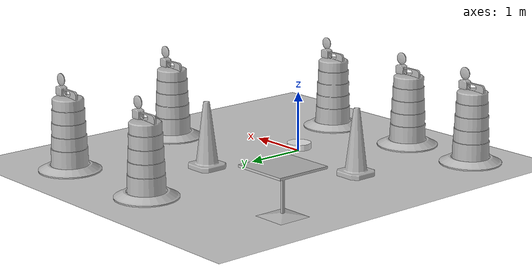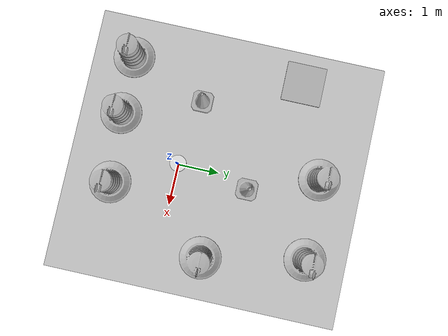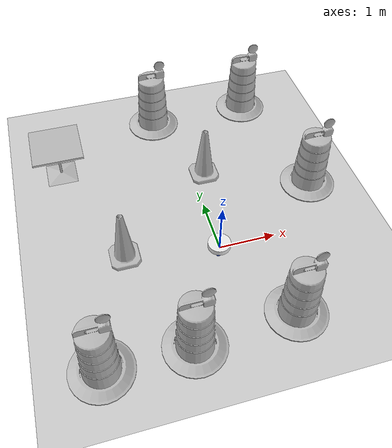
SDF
<sdf version="1.7">
 <world name="default">
  <light name="sun" type="directional">
   <pose>0 0 10 0 -0 0</pose>
   <diffuse>0.8 0.8 0.8 1</diffuse>
   <specular>0.2 0.2 0.2 1</specular>
   <attenuation>
    <range>1000</range>
    <constant>0.9</constant>
    <linear>0.01</linear>
    <quadratic>0.001</quadratic>
   </attenuation>
   <direction>-0.5 0.1 -0.9</direction>
   <spot><inner_angle>0</inner_angle><outer_angle>0</outer_angle><falloff>0</falloff></spot>
  </light>
  <model name="ground_plane">
   <static>1</static>
   <link name="link">
    <collision name="collision">
     <geometry><plane><normal>0 0 1</normal><size>100 100</size></plane></geometry>
     <surface><friction><ode><mu>100</mu><mu2>50</mu2></ode></friction></surface>
    </collision>
    <visual name="visual">
     <cast_shadows>0</cast_shadows>
     <geometry><plane><normal>0 0 1</normal><size>100 100</size></plane></geometry>
     <material>
      <script><uri>file://media/materials/scripts/gazebo.material</uri><name>Gazebo/Grey</name></script>
     </material>
    </visual>
   </link>
  </model>
  <gravity>0 0 -9.8</gravity>
  <magnetic_field>6e-06 2.3e-05 -4.2e-05</magnetic_field>
  <atmosphere type="adiabatic"/>
  <physics type="ode">
   <max_step_size>0.001</max_step_size>
   <real_time_factor>1</real_time_factor>
   <real_time_update_rate>1000</real_time_update_rate>
  </physics>
  <scene><ambient>0.4 0.4 0.4 1</ambient><background>0.7 0.7 0.7 1</background><shadows>1</shadows></scene>
  <spherical_coordinates>
   <surface_model>EARTH_WGS84</surface_model>
   <latitude_deg>0</latitude_deg>
   <longitude_deg>0</longitude_deg>
   <elevation>0</elevation>
   <heading_deg>0</heading_deg>
  </spherical_coordinates>
  <model name="ute_datn">
   <link name="base_link">
    <inertial>
     <pose>0.055769 0 0.048077 0 -0 0</pose>
     <mass>5.2</mass>
     <inertia>
      <ixx>0.0548474</ixx>
      <ixy>0</ixy>
      <ixz>0.00144231</ixz>
      <iyy>0.0591744</iyy>
      <iyz>0</iyz>
      <izz>0.104527</izz>
     </inertia>
    </inertial>
    <collision name="base_link_fixed_joint_lump__chassis_collision">
     <pose>0.05 0 0.05 0 -0 0</pose>
     <geometry><cylinder><length>0.1</length><radius>0.2</radius></cylinder></geometry>
    </collision>
    <collision name="base_link_fixed_joint_lump__caster_wheel_collision_1">
     <pose>0.2 0 0 0 -0 0</pose>
     <geometry><sphere><radius>0.05</radius></sphere></geometry>
     <surface><friction><ode><mu>0.001</mu><mu2>0.001</mu2></ode></friction></surface>
    </collision>
    <visual name="base_link_fixed_joint_lump__chassis_visual">
     <pose>0.05 0 0.05 0 -0 0</pose>
     <geometry><cylinder><length>0.1</length><radius>0.2</radius></cylinder></geometry>
     <material>
      <script><name>Gazebo/White</name><uri>file://media/materials/scripts/gazebo.material</uri></script>
     </material>
    </visual>
    <visual name="base_link_fixed_joint_lump__caster_wheel_visual_1">
     <pose>0.2 0 0 0 -0 0</pose>
     <geometry><sphere><radius>0.05</radius></sphere></geometry>
     <material>
      <script><name>Gazebo/Black</name><uri>file://media/materials/scripts/gazebo.material</uri></script>
     </material>
    </visual>
   </link>
   <joint name="left_wheel_joint" type="revolute">
    <pose relative_to="base_link">0 0.15 0 -1.5708 0 0</pose>
    <parent>base_link</parent>
    <child>left_wheel</child>
    <axis>
     <xyz>0 0 1</xyz>
     <limit><lower>-1e+16</lower><upper>1e+16</upper></limit>
     <dynamics><spring_reference>0</spring_reference><spring_stiffness>0</spring_stiffness></dynamics>
    </axis>
   </joint>
   <link name="left_wheel">
    <pose relative_to="left_wheel_joint">0 0 0 0 -0 0</pose>
    <inertial>
     <mass>0.1</mass>
     <inertia>
      <ixx>7.58333e-05</ixx>
      <ixy>0</ixy>
      <ixz>0</ixz>
      <iyy>7.58333e-05</iyy>
      <iyz>0</iyz>
      <izz>0.000125</izz>
     </inertia>
    </inertial>
    <collision name="left_wheel_collision">
     <geometry><cylinder><length>0.04</length><radius>0.05</radius></cylinder></geometry>
    </collision>
    <visual name="left_wheel_visual">
     <geometry><cylinder><length>0.04</length><radius>0.05</radius></cylinder></geometry>
     <material>
      <script><name>Gazebo/Blue</name><uri>file://media/materials/scripts/gazebo.material</uri></script>
     </material>
    </visual>
   </link>
   <joint name="right_wheel_joint" type="revolute">
    <pose relative_to="base_link">0 -0.15 0 1.5708 -0 0</pose>
    <parent>base_link</parent>
    <child>right_wheel</child>
    <axis>
     <xyz>0 0 -1</xyz>
     <limit><lower>-1e+16</lower><upper>1e+16</upper></limit>
     <dynamics><spring_reference>0</spring_reference><spring_stiffness>0</spring_stiffness></dynamics>
    </axis>
   </joint>
   <link name="right_wheel">
    <pose relative_to="right_wheel_joint">0 0 0 0 -0 0</pose>
    <inertial>
     <mass>0.1</mass>
     <inertia>
      <ixx>7.58333e-05</ixx>
      <ixy>0</ixy>
      <ixz>0</ixz>
      <iyy>7.58333e-05</iyy>
      <iyz>0</iyz>
      <izz>0.000125</izz>
     </inertia>
    </inertial>
    <collision name="right_wheel_collision">
     <geometry><cylinder><length>0.04</length><radius>0.05</radius></cylinder></geometry>
    </collision>
    <visual name="right_wheel_visual">
     <geometry><cylinder><length>0.04</length><radius>0.05</radius></cylinder></geometry>
     <material>
      <script><name>Gazebo/Blue</name><uri>file://media/materials/scripts/gazebo.material</uri></script>
     </material>
    </visual>
   </link>
   <static>0</static>
   <plugin name="diff_drive" filename="libgazebo_ros_diff_drive.so">
    <left_joint>left_wheel_joint</left_joint>
    <right_joint>right_wheel_joint</right_joint>
    <wheel_separation>0.3</wheel_separation>
    <wheel_diameter>0.05</wheel_diameter>
    <max_wheel_torque>200</max_wheel_torque>
    <max_wheel_acceleration>10.0</max_wheel_acceleration>
    <odometry_frame>odom</odometry_frame>
    <robot_base_frame>base_link</robot_base_frame>
    <publish_odom>1</publish_odom>
    <publish_odom_tf>1</publish_odom_tf>
    <publish_wheel_tf>1</publish_wheel_tf>
   </plugin>
   <pose>-0.065327 0.001394 0.049997 1e-06 -1.5e-05 -0.026117</pose>
  </model>
  <model name="cafe_table">
   <static>1</static>
   <link name="link">
    <collision name="surface">
     <pose>0 0 0.755 0 -0 0</pose>
     <geometry><box><size>0.913 0.913 0.04</size></box></geometry>
    </collision>
    <collision name="column">
     <pose>0 0 0.37 0 -0 0</pose>
     <geometry><box><size>0.042 0.042 0.74</size></box></geometry>
    </collision>
    <collision name="base">
     <pose>0 0 0.02 0 -0 0</pose>
     <geometry><box><size>0.56 0.56 0.04</size></box></geometry>
    </collision>
    <visual name="visual">
     <geometry><mesh><uri>model://cafe_table/meshes/cafe_table.dae</uri></mesh></geometry>
    </visual>
   </link>
   <pose>-2.4121 2.49062 0 0 -0 0</pose>
  </model>
  <model name="Construction Barrel">
   <link name="link">
    <inertial>
     <pose>0 0 0.4 0 -0 0</pose>
     <mass>500</mass>
     <inertia><ixx>51.2096</ixx><iyy>51.2096</iyy><izz>25</izz><ixy>0</ixy><ixz>0</ixz><iyz>0</iyz></inertia>
    </inertial>
    <collision name="collision">
     <geometry><mesh><uri>model://construction_barrel/meshes/construction_barrel.dae</uri></mesh></geometry>
    </collision>
    <visual name="visual">
     <geometry><mesh><uri>model://construction_barrel/meshes/construction_barrel.dae</uri></mesh></geometry>
    </visual>
   </link>
   <pose>-0.368545 3.42104 0 0 0 -1.5e-05</pose>
  </model>
  <model name="Construction Barrel_0">
   <link name="link">
    <inertial>
     <pose>0 0 0.4 0 -0 0</pose>
     <mass>500</mass>
     <inertia><ixx>51.2096</ixx><iyy>51.2096</iyy><izz>25</izz><ixy>0</ixy><ixz>0</ixz><iyz>0</iyz></inertia>
    </inertial>
    <collision name="collision">
     <geometry><mesh><uri>model://construction_barrel/meshes/construction_barrel.dae</uri></mesh></geometry>
    </collision>
    <visual name="visual">
     <geometry><mesh><uri>model://construction_barrel/meshes/construction_barrel.dae</uri></mesh></geometry>
    </visual>
   </link>
   <pose>1.58014 3.47377 -0 1e-06 -1e-06 -1.2e-05</pose>
  </model>
  <model name="Construction Barrel_1">
   <link name="link">
    <inertial>
     <pose>0 0 0.4 0 -0 0</pose>
     <mass>500</mass>
     <inertia><ixx>51.2096</ixx><iyy>51.2096</iyy><izz>25</izz><ixy>0</ixy><ixz>0</ixz><iyz>0</iyz></inertia>
    </inertial>
    <collision name="collision">
     <geometry><mesh><uri>model://construction_barrel/meshes/construction_barrel.dae</uri></mesh></geometry>
    </collision>
    <visual name="visual">
     <geometry><mesh><uri>model://construction_barrel/meshes/construction_barrel.dae</uri></mesh></geometry>
    </visual>
   </link>
   <pose>-2.3392 -1.63623 -1e-06 0 5e-06 -1e-05</pose>
  </model>
  <model name="Construction Barrel_2">
   <link name="link">
    <inertial>
     <pose>0 0 0.4 0 -0 0</pose>
     <mass>500</mass>
     <inertia><ixx>51.2096</ixx><iyy>51.2096</iyy><izz>25</izz><ixy>0</ixy><ixz>0</ixz><iyz>0</iyz></inertia>
    </inertial>
    <collision name="collision">
     <geometry><mesh><uri>model://construction_barrel/meshes/construction_barrel.dae</uri></mesh></geometry>
    </collision>
    <visual name="visual">
     <geometry><mesh><uri>model://construction_barrel/meshes/construction_barrel.dae</uri></mesh></geometry>
    </visual>
   </link>
   <pose>0.774175 -1.51322 -2e-06 -0 7e-06 -8e-06</pose>
  </model>
  <model name="Construction Barrel_3">
   <link name="link">
    <inertial>
     <pose>0 0 0.4 0 -0 0</pose>
     <mass>500</mass>
     <inertia><ixx>51.2096</ixx><iyy>51.2096</iyy><izz>25</izz><ixy>0</ixy><ixz>0</ixz><iyz>0</iyz></inertia>
    </inertial>
    <collision name="collision">
     <geometry><mesh><uri>model://construction_barrel/meshes/construction_barrel.dae</uri></mesh></geometry>
    </collision>
    <visual name="visual">
     <geometry><mesh><uri>model://construction_barrel/meshes/construction_barrel.dae</uri></mesh></geometry>
    </visual>
   </link>
   <pose>2.07511 1.01409 -1e-06 3e-06 1e-05 -7e-06</pose>
  </model>
  <model name="Construction Cone">
   <link name="link">
    <collision name="collision">
     <geometry>
      <mesh><scale>10 10 10</scale><uri>model://construction_cone/meshes/construction_cone.dae</uri></mesh>
     </geometry>
    </collision>
    <visual name="visual">
     <geometry>
      <mesh><scale>10 10 10</scale><uri>model://construction_cone/meshes/construction_cone.dae</uri></mesh>
     </geometry>
    </visual>
    <inertial>
     <inertia><ixx>1</ixx><ixy>0</ixy><ixz>0</ixz><iyy>1</iyy><iyz>0</iyz><izz>1</izz></inertia>
     <mass>1</mass>
    </inertial>
   </link>
   <pose>0.23901 1.75464 -9e-06 -5e-06 -0 -0</pose>
  </model>
  <model name="Construction Barrel_4">
   <link name="link">
    <inertial>
     <pose>0 0 0.4 0 -0 0</pose>
     <mass>500</mass>
     <inertia><ixx>51.2096</ixx><iyy>51.2096</iyy><izz>25</izz><ixy>0</ixy><ixz>0</ixz><iyz>0</iyz></inertia>
    </inertial>
    <collision name="collision">
     <geometry><mesh><uri>model://construction_barrel/meshes/construction_barrel.dae</uri></mesh></geometry>
    </collision>
    <visual name="visual">
     <geometry><mesh><uri>model://construction_barrel/meshes/construction_barrel.dae</uri></mesh></geometry>
    </visual>
   </link>
   <pose>-0.921944 -1.63515 0 0 0 -3e-06</pose>
  </model>
  <model name="Construction Cone_0">
   <link name="link">
    <collision name="collision">
     <geometry>
      <mesh><scale>10 10 10</scale><uri>model://construction_cone/meshes/construction_cone.dae</uri></mesh>
     </geometry>
    </collision>
    <visual name="visual">
     <geometry>
      <mesh><scale>10 10 10</scale><uri>model://construction_cone/meshes/construction_cone.dae</uri></mesh>
     </geometry>
    </visual>
    <inertial>
     <inertia><ixx>1</ixx><ixy>0</ixy><ixz>0</ixz><iyy>1</iyy><iyz>0</iyz><izz>1</izz></inertia>
     <mass>1</mass>
    </inertial>
   </link>
   <pose>-1.61916 0.243572 -0 0 -1e-06 0</pose>
  </model>
 </world>
</sdf>
